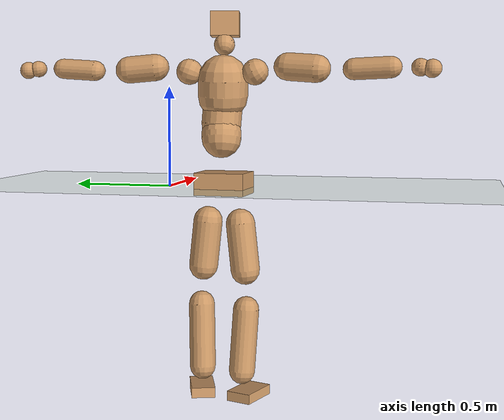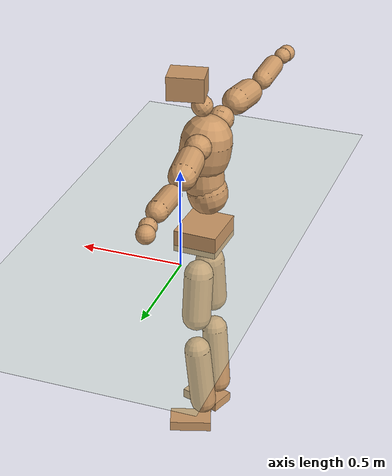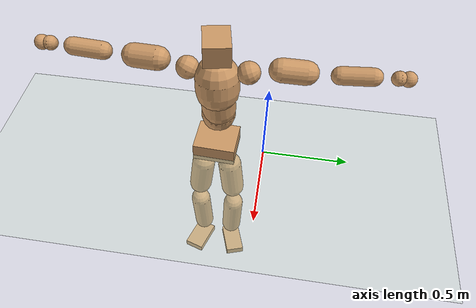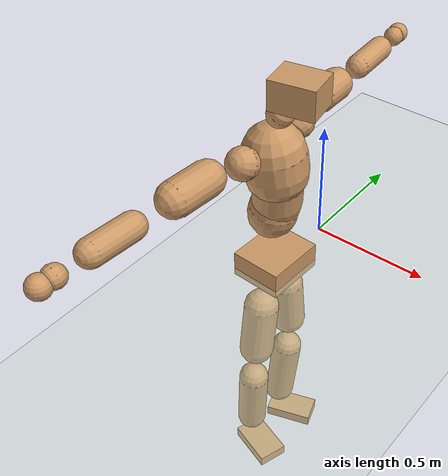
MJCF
<mujoco model="humanoid">
  <compiler coordinate="local" angle="radian"/>
  <default>
    <joint damping="0.0" armature="0.01" stiffness="0.0" limited="true"/>
    <geom conaffinity="1" condim="3" contype="7" margin="0.001" rgba="0.8 0.6 .4 1"/>
  </default>
  <asset>
    <texture type="skybox" builtin="gradient" rgb1=".4 .5 .6" rgb2="0 0 0" width="100" height="100"/>
    <texture builtin="flat" height="1278" mark="cross" markrgb="1 1 1" name="texgeom" random="0.01" rgb1="0.8 0.6 0.4" rgb2="0.8 0.6 0.4" type="cube" width="127"/>
    <texture builtin="checker" height="100" name="texplane" rgb1="0 0 0" rgb2="0.8 0.8 0.8" type="2d" width="100"/>
    <material name="MatPlane" reflectance="0.5" shininess="1" specular="1" texrepeat="60 60" texture="texplane"/>
    <material name="geom" texture="texgeom" texuniform="true"/>
  </asset>
  <worldbody>
    <light cutoff="100" diffuse="1 1 1" dir="-0 0 -1.3" directional="true" exponent="1" pos="0 0 1.3" specular=".1 .1 .1"/>
    <geom conaffinity="1" condim="3" name="floor" pos="0 0 0" rgba="0.8 0.9 0.8 1" size="100 100 .2" type="plane" material="MatPlane"/>
    <body name="Pelvis" pos="-0.001 -0.2879 0.0307">
      <freejoint name="Pelvis"/>
      <geom type="box" contype="1" conaffinity="1" density="5359.374534" pos="-0.0134 0.0006 -0.0094" size="0.108 0.1254 0.0556" quat="0.9998 0.0000 0.0000 -0.0212" name="Pelvis"/>
      <body name="L_Hip" pos="-0.018 0.0713 -0.0975">
        <joint name="L_Hip_x" type="hinge" pos="0 0 0" axis="1 0 0" stiffness="1600" damping="160" armature="0.02" range="-180.0000 180.0000"/>
        <joint name="L_Hip_y" type="hinge" pos="0 0 0" axis="0 1 0" stiffness="1600" damping="160" armature="0.02" range="-180.0000 180.0000"/>
        <joint name="L_Hip_z" type="hinge" pos="0 0 0" axis="0 0 1" stiffness="1600" damping="160" armature="0.02" range="-180.0000 180.0000"/>
        <geom type="capsule" contype="1" conaffinity="1" density="2040.816327" size="0.0729" fromto="0.0009 0.0109 -0.1024 0.0030 0.0354 -0.3330" name="L_Hip"/>
        <body name="L_Knee" pos="0.0039 0.0463 -0.4353">
          <joint name="L_Knee_x" type="hinge" pos="0 0 0" axis="1 0 0" stiffness="1600" damping="160" armature="0.02" range="-180.0000 180.0000"/>
          <joint name="L_Knee_y" type="hinge" pos="0 0 0" axis="0 1 0" stiffness="1600" damping="160" armature="0.02" range="-180.0000 180.0000"/>
          <joint name="L_Knee_z" type="hinge" pos="0 0 0" axis="0 0 1" stiffness="1600" damping="160" armature="0.02" range="-180.0000 180.0000"/>
          <geom type="capsule" contype="1" conaffinity="1" density="1234.567901" size="0.0654" fromto="-0.0088 -0.0037 -0.0950 -0.0380 -0.0161 -0.4119" name="L_Knee"/>
          <body name="L_Ankle" pos="-0.0468 -0.0198 -0.5069">
            <joint name="L_Ankle_x" type="hinge" pos="0 0 0" axis="1 0 0" stiffness="1600" damping="160" armature="0.02" range="-180.0000 180.0000"/>
            <joint name="L_Ankle_y" type="hinge" pos="0 0 0" axis="0 1 0" stiffness="1600" damping="160" armature="0.02" range="-180.0000 180.0000"/>
            <joint name="L_Ankle_z" type="hinge" pos="0 0 0" axis="0 0 1" stiffness="1600" damping="160" armature="0.02" range="-180.0000 180.0000"/>
            <geom type="box" contype="1" conaffinity="1" density="999.999998" pos="0.0705 0.0237 -0.0359" size="0.1046 0.0599 0.0259" quat="0.9869 0.0000 0.0000 0.1615" name="L_Ankle"/>
            <body name="L_Toe" pos="0.1409 0.0474 -0.0718">
              <joint name="L_Toe_x" type="hinge" pos="0 0 0" axis="1 0 0" stiffness="1000" damping="100" armature="0.02" range="-180.0000 180.0000"/>
              <joint name="L_Toe_y" type="hinge" pos="0 0 0" axis="0 1 0" stiffness="1000" damping="100" armature="0.02" range="-180.0000 180.0000"/>
              <joint name="L_Toe_z" type="hinge" pos="0 0 0" axis="0 0 1" stiffness="1000" damping="100" armature="0.02" range="-180.0000 180.0000"/>
              <geom type="box" contype="1" conaffinity="1" density="8462254.554936" pos="0.0000 0.0000 0.0367" size="0.0012 0.0028 0.0013" quat="0.9862 0.0000 0.0000 0.1656" name="L_Toe"/>
            </body>
          </body>
        </body>
      </body>
      <body name="R_Hip" pos="-0.0134 -0.0736 -0.1066">
        <joint name="R_Hip_x" type="hinge" pos="0 0 0" axis="1 0 0" stiffness="1600" damping="160" armature="0.02" range="-180.0000 180.0000"/>
        <joint name="R_Hip_y" type="hinge" pos="0 0 0" axis="0 1 0" stiffness="1600" damping="160" armature="0.02" range="-180.0000 180.0000"/>
        <joint name="R_Hip_z" type="hinge" pos="0 0 0" axis="0 0 1" stiffness="1600" damping="160" armature="0.02" range="-180.0000 180.0000"/>
        <geom type="capsule" contype="1" conaffinity="1" density="2040.816327" size="0.0727" fromto="-0.0028 -0.0117 -0.1019 -0.0092 -0.0389 -0.3388" name="R_Hip"/>
        <body name="R_Knee" pos="-0.012 -0.0506 -0.4408">
          <joint name="R_Knee_x" type="hinge" pos="0 0 0" axis="1 0 0" stiffness="1600" damping="160" armature="0.02" range="-180.0000 180.0000"/>
          <joint name="R_Knee_y" type="hinge" pos="0 0 0" axis="0 1 0" stiffness="1600" damping="160" armature="0.02" range="-180.0000 180.0000"/>
          <joint name="R_Knee_z" type="hinge" pos="0 0 0" axis="0 0 1" stiffness="1600" damping="160" armature="0.02" range="-180.0000 180.0000"/>
          <geom type="capsule" contype="1" conaffinity="1" density="1234.567901" size="0.0648" fromto="-0.0080 0.0045 -0.0944 -0.0346 0.0193 -0.4076" name="R_Knee"/>
          <body name="R_Ankle" pos="-0.0427 0.0238 -0.5019">
            <joint name="R_Ankle_x" type="hinge" pos="0 0 0" axis="1 0 0" stiffness="1600" damping="160" armature="0.02" range="-180.0000 180.0000"/>
            <joint name="R_Ankle_y" type="hinge" pos="0 0 0" axis="0 1 0" stiffness="1600" damping="160" armature="0.02" range="-180.0000 180.0000"/>
            <joint name="R_Ankle_z" type="hinge" pos="0 0 0" axis="0 0 1" stiffness="1600" damping="160" armature="0.02" range="-180.0000 180.0000"/>
            <geom type="box" contype="1" conaffinity="1" density="999.999986" pos="0.0759 -0.0246 -0.0370" size="0.1065 0.0643 0.0247" quat="0.9877 0.0000 0.0000 -0.1561" name="R_Ankle"/>
            <body name="R_Toe" pos="0.1519 -0.0492 -0.074">
              <joint name="R_Toe_x" type="hinge" pos="0 0 0" axis="1 0 0" stiffness="1000" damping="100" armature="0.02" range="-180.0000 180.0000"/>
              <joint name="R_Toe_y" type="hinge" pos="0 0 0" axis="0 1 0" stiffness="1000" damping="100" armature="0.02" range="-180.0000 180.0000"/>
              <joint name="R_Toe_z" type="hinge" pos="0 0 0" axis="0 0 1" stiffness="1000" damping="100" armature="0.02" range="-180.0000 180.0000"/>
              <geom type="box" contype="1" conaffinity="1" density="7833041.914978" pos="0.0000 0.0000 0.0398" size="0.0013 0.003 0.0014" quat="0.9889 0.0000 0.0000 -0.1484" name="R_Toe"/>
            </body>
          </body>
        </body>
      </body>
      <body name="Torso" pos="-0.0491 0.0058 0.148">
        <joint name="Torso_x" type="hinge" pos="0 0 0" axis="1 0 0" stiffness="2000" damping="200" armature="0.02" range="-180.0000 180.0000"/>
        <joint name="Torso_y" type="hinge" pos="0 0 0" axis="0 1 0" stiffness="2000" damping="200" armature="0.02" range="-180.0000 180.0000"/>
        <joint name="Torso_z" type="hinge" pos="0 0 0" axis="0 0 1" stiffness="2000" damping="200" armature="0.02" range="-180.0000 180.0000"/>
        <geom type="capsule" contype="1" conaffinity="1" density="2040.816327" size="0.0989" fromto="0.0201 0.0032 0.0967 0.0144 0.0023 0.0691" name="Torso"/>
        <body name="Spine" pos="0.0345 0.0054 0.1658">
          <joint name="Spine_x" type="hinge" pos="0 0 0" axis="1 0 0" stiffness="2000" damping="200" armature="0.02" range="-180.0000 180.0000"/>
          <joint name="Spine_y" type="hinge" pos="0 0 0" axis="0 1 0" stiffness="2000" damping="200" armature="0.02" range="-180.0000 180.0000"/>
          <joint name="Spine_z" type="hinge" pos="0 0 0" axis="0 0 1" stiffness="2000" damping="200" armature="0.02" range="-180.0000 180.0000"/>
          <geom type="capsule" contype="1" conaffinity="1" density="2040.816327" size="0.0982" fromto="0.0081 -0.0060 0.0977 -0.0026 0.0019 -0.0308" name="Spine"/>
          <body name="Chest" pos="0.0055 -0.0041 0.0668">
            <joint name="Chest_x" type="hinge" pos="0 0 0" axis="1 0 0" stiffness="2000" damping="200" armature="0.02" range="-180.0000 180.0000"/>
            <joint name="Chest_y" type="hinge" pos="0 0 0" axis="0 1 0" stiffness="2000" damping="200" armature="0.02" range="-180.0000 180.0000"/>
            <joint name="Chest_z" type="hinge" pos="0 0 0" axis="0 0 1" stiffness="2000" damping="200" armature="0.02" range="-180.0000 180.0000"/>
            <geom type="capsule" contype="1" conaffinity="1" density="2040.816327" size="0.1242" fromto="-0.0162 -0.0054 0.1231 -0.0060 -0.0020 0.0459" name="Chest"/>
            <body name="Neck" pos="-0.0254 -0.0117 0.2443">
              <joint name="Neck_x" type="hinge" pos="0 0 0" axis="1 0 0" stiffness="1000" damping="100" armature="0.02" range="-180.0000 180.0000"/>
              <joint name="Neck_y" type="hinge" pos="0 0 0" axis="0 1 0" stiffness="1000" damping="100" armature="0.02" range="-180.0000 180.0000"/>
              <joint name="Neck_z" type="hinge" pos="0 0 0" axis="0 0 1" stiffness="1000" damping="100" armature="0.02" range="-180.0000 180.0000"/>
              <geom type="capsule" contype="1" conaffinity="1" density="1000" size="0.0517" fromto="0.0337 0.0059 0.0510 0.0348 0.0061 0.0526" name="Neck"/>
              <body name="Head" pos="0.0686 0.012 0.1036">
                <joint name="Head_x" type="hinge" pos="0 0 0" axis="1 0 0" stiffness="1000" damping="100" armature="0.02" range="-180.0000 180.0000"/>
                <joint name="Head_y" type="hinge" pos="0 0 0" axis="0 1 0" stiffness="1000" damping="100" armature="0.02" range="-180.0000 180.0000"/>
                <joint name="Head_z" type="hinge" pos="0 0 0" axis="0 0 1" stiffness="1000" damping="100" armature="0.02" range="-180.0000 180.0000"/>
                <geom type="box" contype="1" conaffinity="1" density="2249.999968" pos="0.0353 0.0070 0.0528" size="0.0902 0.071 0.0596" quat="0.9952 0.0000 0.0000 0.0980" name="Head"/>
              </body>
            </body>
            <body name="L_Thorax" pos="-0.0183 0.0909 0.1332">
              <joint name="L_Thorax_x" type="hinge" pos="0 0 0" axis="1 0 0" stiffness="1000" damping="100" armature="0.02" range="-180.0000 180.0000"/>
              <joint name="L_Thorax_y" type="hinge" pos="0 0 0" axis="0 1 0" stiffness="1000" damping="100" armature="0.02" range="-180.0000 180.0000"/>
              <joint name="L_Thorax_z" type="hinge" pos="0 0 0" axis="0 0 1" stiffness="1000" damping="100" armature="0.02" range="-180.0000 180.0000"/>
              <geom type="capsule" contype="1" conaffinity="1" density="1000" size="0.0641" fromto="-0.0138 0.0709 0.0296 -0.0142 0.0727 0.0303" name="L_Thorax"/>
              <body name="L_Shoulder" pos="-0.028 0.1437 0.0599">
                <joint name="L_Shoulder_x" type="hinge" pos="0 0 0" axis="1 0 0" stiffness="1000" damping="100" armature="0.02" range="-720.0000 720.0000"/>
                <joint name="L_Shoulder_y" type="hinge" pos="0 0 0" axis="0 1 0" stiffness="1000" damping="100" armature="0.02" range="-720.0000 720.0000"/>
                <joint name="L_Shoulder_z" type="hinge" pos="0 0 0" axis="0 0 1" stiffness="1000" damping="100" armature="0.02" range="-720.0000 720.0000"/>
                <geom type="capsule" contype="1" conaffinity="1" density="1000" size="0.0663" fromto="-0.0093 0.0955 -0.0082 -0.0227 0.2316 -0.0199" name="L_Shoulder"/>
                <body name="L_Elbow" pos="-0.032 0.3271 -0.0281">
                  <joint name="L_Elbow_x" type="hinge" pos="0 0 0" axis="1 0 0" stiffness="1000" damping="100" armature="0.02" range="-720.0000 720.0000"/>
                  <joint name="L_Elbow_y" type="hinge" pos="0 0 0" axis="0 1 0" stiffness="1000" damping="100" armature="0.02" range="-720.0000 720.0000"/>
                  <joint name="L_Elbow_z" type="hinge" pos="0 0 0" axis="0 0 1" stiffness="1000" damping="100" armature="0.02" range="-720.0000 720.0000"/>
                  <geom type="capsule" contype="1" conaffinity="1" density="1000" size="0.0499" fromto="-0.0015 0.0797 0.0053 -0.0046 0.2500 0.0165" name="L_Elbow"/>
                  <body name="L_Wrist" pos="-0.006 0.3298 0.0218">
                    <joint name="L_Wrist_x" type="hinge" pos="0 0 0" axis="1 0 0" stiffness="600" damping="60" armature="0.02" range="-180.0000 180.0000"/>
                    <joint name="L_Wrist_y" type="hinge" pos="0 0 0" axis="0 1 0" stiffness="600" damping="60" armature="0.02" range="-180.0000 180.0000"/>
                    <joint name="L_Wrist_z" type="hinge" pos="0 0 0" axis="0 0 1" stiffness="600" damping="60" armature="0.02" range="-180.0000 180.0000"/>
                    <geom type="capsule" contype="1" conaffinity="1" density="1000" size="0.0407" fromto="-0.0094 0.0508 -0.0063 -0.0098 0.0527 -0.0065" name="L_Wrist"/>
                    <body name="L_Hand" pos="-0.0192 0.1035 -0.0128">
                      <joint name="L_Hand_x" type="hinge" pos="0 0 0" axis="1 0 0" stiffness="600" damping="60" armature="0.02" range="-180.0000 180.0000"/>
                      <joint name="L_Hand_y" type="hinge" pos="0 0 0" axis="0 1 0" stiffness="600" damping="60" armature="0.02" range="-180.0000 180.0000"/>
                      <joint name="L_Hand_z" type="hinge" pos="0 0 0" axis="0 0 1" stiffness="600" damping="60" armature="0.02" range="-180.0000 180.0000"/>
                      <geom type="sphere" contype="1" conaffinity="1" density="1000" size="0.0425" pos="0.0000 0.0000 0.0000" name="L_Hand"/>
                    </body>
                  </body>
                </body>
              </body>
            </body>
            <body name="R_Thorax" pos="-0.0228 -0.1015 0.1294">
              <joint name="R_Thorax_x" type="hinge" pos="0 0 0" axis="1 0 0" stiffness="1000" damping="100" armature="0.02" range="-180.0000 180.0000"/>
              <joint name="R_Thorax_y" type="hinge" pos="0 0 0" axis="0 1 0" stiffness="1000" damping="100" armature="0.02" range="-180.0000 180.0000"/>
              <joint name="R_Thorax_z" type="hinge" pos="0 0 0" axis="0 0 1" stiffness="1000" damping="100" armature="0.02" range="-180.0000 180.0000"/>
              <geom type="capsule" contype="1" conaffinity="1" density="1000" size="0.0641" fromto="-0.0062 -0.0671 0.0304 -0.0063 -0.0689 0.0313" name="R_Thorax"/>
              <body name="R_Shoulder" pos="-0.0125 -0.136 0.0617">
                <joint name="R_Shoulder_x" type="hinge" pos="0 0 0" axis="1 0 0" stiffness="1000" damping="100" armature="0.02" range="-720.0000 720.0000"/>
                <joint name="R_Shoulder_y" type="hinge" pos="0 0 0" axis="0 1 0" stiffness="1000" damping="100" armature="0.02" range="-720.0000 720.0000"/>
                <joint name="R_Shoulder_z" type="hinge" pos="0 0 0" axis="0 0 1" stiffness="1000" damping="100" armature="0.02" range="-720.0000 720.0000"/>
                <geom type="capsule" contype="1" conaffinity="1" density="1000" size="0.0675" fromto="-0.0127 -0.0964 -0.0073 -0.0314 -0.2385 -0.0180" name="R_Shoulder"/>
                <body name="R_Elbow" pos="-0.0441 -0.3349 -0.0253">
                  <joint name="R_Elbow_x" type="hinge" pos="0 0 0" axis="1 0 0" stiffness="1000" damping="100" armature="0.02" range="-720.0000 720.0000"/>
                  <joint name="R_Elbow_y" type="hinge" pos="0 0 0" axis="0 1 0" stiffness="1000" damping="100" armature="0.02" range="-720.0000 720.0000"/>
                  <joint name="R_Elbow_z" type="hinge" pos="0 0 0" axis="0 0 1" stiffness="1000" damping="100" armature="0.02" range="-720.0000 720.0000"/>
                  <geom type="capsule" contype="1" conaffinity="1" density="1000" size="0.0512" fromto="-0.0018 -0.0811 0.0033 -0.0056 -0.2554 0.0105" name="R_Elbow"/>
                  <body name="R_Wrist" pos="-0.0073 -0.3365 0.0139">
                    <joint name="R_Wrist_x" type="hinge" pos="0 0 0" axis="1 0 0" stiffness="600" damping="60" armature="0.02" range="-180.0000 180.0000"/>
                    <joint name="R_Wrist_y" type="hinge" pos="0 0 0" axis="0 1 0" stiffness="600" damping="60" armature="0.02" range="-180.0000 180.0000"/>
                    <joint name="R_Wrist_z" type="hinge" pos="0 0 0" axis="0 0 1" stiffness="600" damping="60" armature="0.02" range="-180.0000 180.0000"/>
                    <geom type="capsule" contype="1" conaffinity="1" density="1000" size="0.0419" fromto="-0.0062 -0.0525 -0.0053 -0.0065 -0.0545 -0.0055" name="R_Wrist"/>
                    <body name="R_Hand" pos="-0.0127 -0.107 -0.0109">
                      <joint name="R_Hand_x" type="hinge" pos="0 0 0" axis="1 0 0" stiffness="600" damping="60" armature="0.02" range="-180.0000 180.0000"/>
                      <joint name="R_Hand_y" type="hinge" pos="0 0 0" axis="0 1 0" stiffness="600" damping="60" armature="0.02" range="-180.0000 180.0000"/>
                      <joint name="R_Hand_z" type="hinge" pos="0 0 0" axis="0 0 1" stiffness="600" damping="60" armature="0.02" range="-180.0000 180.0000"/>
                      <geom type="sphere" contype="1" conaffinity="1" density="1000" size="0.0434" pos="0.0000 0.0000 0.0000" name="R_Hand"/>
                    </body>
                  </body>
                </body>
              </body>
            </body>
          </body>
        </body>
      </body>
    </body>
  </worldbody>
  <actuator>
    <motor name="L_Hip_x" joint="L_Hip_x" gear="500"/>
    <motor name="L_Hip_y" joint="L_Hip_y" gear="500"/>
    <motor name="L_Hip_z" joint="L_Hip_z" gear="500"/>
    <motor name="L_Knee_x" joint="L_Knee_x" gear="500"/>
    <motor name="L_Knee_y" joint="L_Knee_y" gear="500"/>
    <motor name="L_Knee_z" joint="L_Knee_z" gear="500"/>
    <motor name="L_Ankle_x" joint="L_Ankle_x" gear="500"/>
    <motor name="L_Ankle_y" joint="L_Ankle_y" gear="500"/>
    <motor name="L_Ankle_z" joint="L_Ankle_z" gear="500"/>
    <motor name="L_Toe_x" joint="L_Toe_x" gear="500"/>
    <motor name="L_Toe_y" joint="L_Toe_y" gear="500"/>
    <motor name="L_Toe_z" joint="L_Toe_z" gear="500"/>
    <motor name="R_Hip_x" joint="R_Hip_x" gear="500"/>
    <motor name="R_Hip_y" joint="R_Hip_y" gear="500"/>
    <motor name="R_Hip_z" joint="R_Hip_z" gear="500"/>
    <motor name="R_Knee_x" joint="R_Knee_x" gear="500"/>
    <motor name="R_Knee_y" joint="R_Knee_y" gear="500"/>
    <motor name="R_Knee_z" joint="R_Knee_z" gear="500"/>
    <motor name="R_Ankle_x" joint="R_Ankle_x" gear="500"/>
    <motor name="R_Ankle_y" joint="R_Ankle_y" gear="500"/>
    <motor name="R_Ankle_z" joint="R_Ankle_z" gear="500"/>
    <motor name="R_Toe_x" joint="R_Toe_x" gear="500"/>
    <motor name="R_Toe_y" joint="R_Toe_y" gear="500"/>
    <motor name="R_Toe_z" joint="R_Toe_z" gear="500"/>
    <motor name="Torso_x" joint="Torso_x" gear="500"/>
    <motor name="Torso_y" joint="Torso_y" gear="500"/>
    <motor name="Torso_z" joint="Torso_z" gear="500"/>
    <motor name="Spine_x" joint="Spine_x" gear="500"/>
    <motor name="Spine_y" joint="Spine_y" gear="500"/>
    <motor name="Spine_z" joint="Spine_z" gear="500"/>
    <motor name="Chest_x" joint="Chest_x" gear="500"/>
    <motor name="Chest_y" joint="Chest_y" gear="500"/>
    <motor name="Chest_z" joint="Chest_z" gear="500"/>
    <motor name="Neck_x" joint="Neck_x" gear="500"/>
    <motor name="Neck_y" joint="Neck_y" gear="500"/>
    <motor name="Neck_z" joint="Neck_z" gear="500"/>
    <motor name="Head_x" joint="Head_x" gear="500"/>
    <motor name="Head_y" joint="Head_y" gear="500"/>
    <motor name="Head_z" joint="Head_z" gear="500"/>
    <motor name="L_Thorax_x" joint="L_Thorax_x" gear="500"/>
    <motor name="L_Thorax_y" joint="L_Thorax_y" gear="500"/>
    <motor name="L_Thorax_z" joint="L_Thorax_z" gear="500"/>
    <motor name="L_Shoulder_x" joint="L_Shoulder_x" gear="500"/>
    <motor name="L_Shoulder_y" joint="L_Shoulder_y" gear="500"/>
    <motor name="L_Shoulder_z" joint="L_Shoulder_z" gear="500"/>
    <motor name="L_Elbow_x" joint="L_Elbow_x" gear="500"/>
    <motor name="L_Elbow_y" joint="L_Elbow_y" gear="500"/>
    <motor name="L_Elbow_z" joint="L_Elbow_z" gear="500"/>
    <motor name="L_Wrist_x" joint="L_Wrist_x" gear="500"/>
    <motor name="L_Wrist_y" joint="L_Wrist_y" gear="500"/>
    <motor name="L_Wrist_z" joint="L_Wrist_z" gear="500"/>
    <motor name="L_Hand_x" joint="L_Hand_x" gear="500"/>
    <motor name="L_Hand_y" joint="L_Hand_y" gear="500"/>
    <motor name="L_Hand_z" joint="L_Hand_z" gear="500"/>
    <motor name="R_Thorax_x" joint="R_Thorax_x" gear="500"/>
    <motor name="R_Thorax_y" joint="R_Thorax_y" gear="500"/>
    <motor name="R_Thorax_z" joint="R_Thorax_z" gear="500"/>
    <motor name="R_Shoulder_x" joint="R_Shoulder_x" gear="500"/>
    <motor name="R_Shoulder_y" joint="R_Shoulder_y" gear="500"/>
    <motor name="R_Shoulder_z" joint="R_Shoulder_z" gear="500"/>
    <motor name="R_Elbow_x" joint="R_Elbow_x" gear="500"/>
    <motor name="R_Elbow_y" joint="R_Elbow_y" gear="500"/>
    <motor name="R_Elbow_z" joint="R_Elbow_z" gear="500"/>
    <motor name="R_Wrist_x" joint="R_Wrist_x" gear="500"/>
    <motor name="R_Wrist_y" joint="R_Wrist_y" gear="500"/>
    <motor name="R_Wrist_z" joint="R_Wrist_z" gear="500"/>
    <motor name="R_Hand_x" joint="R_Hand_x" gear="500"/>
    <motor name="R_Hand_y" joint="R_Hand_y" gear="500"/>
    <motor name="R_Hand_z" joint="R_Hand_z" gear="500"/>
  </actuator>
  <contact>
    <exclude body1="Torso" body2="Chest"/>
    <exclude body1="Head" body2="Chest"/>
    <exclude body1="R_Knee" body2="R_Toe"/>
    <exclude body1="R_Knee" body2="L_Ankle"/>
    <exclude body1="R_Knee" body2="L_Toe"/>
    <exclude body1="L_Knee" body2="L_Toe"/>
    <exclude body1="L_Knee" body2="R_Ankle"/>
    <exclude body1="L_Knee" body2="R_Toe"/>
    <exclude body1="L_Shoulder" body2="Chest"/>
    <exclude body1="R_Shoulder" body2="Chest"/>
  </contact>
  <sensor/>
  <size njmax="700" nconmax="700"/>
</mujoco>
